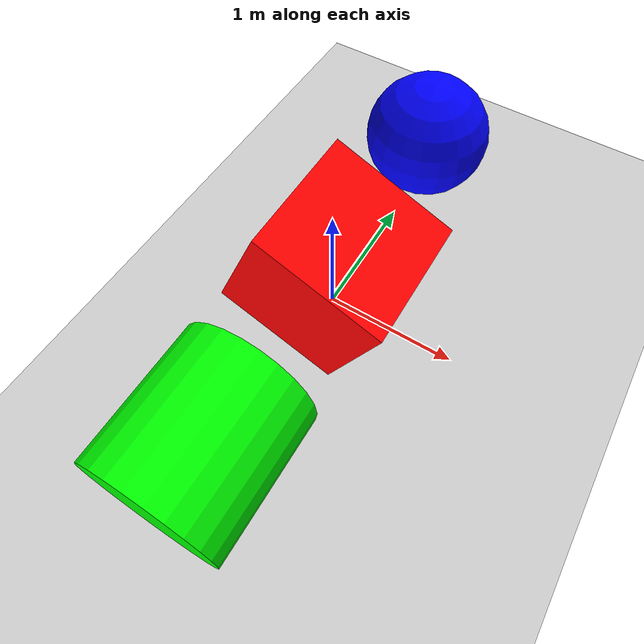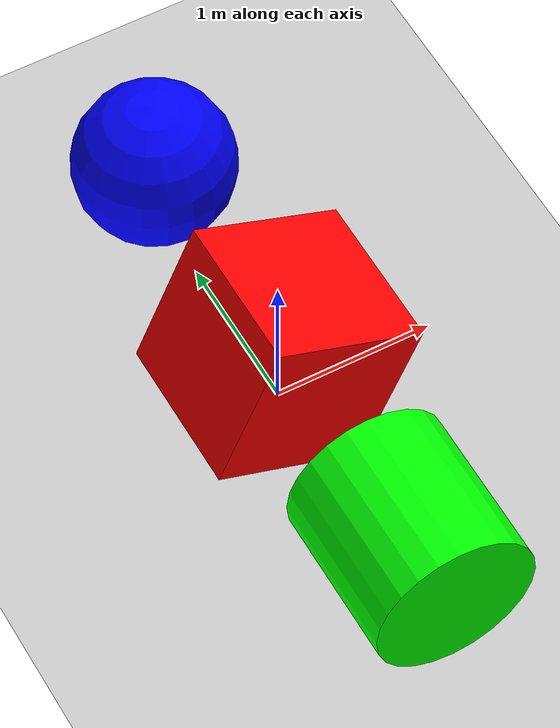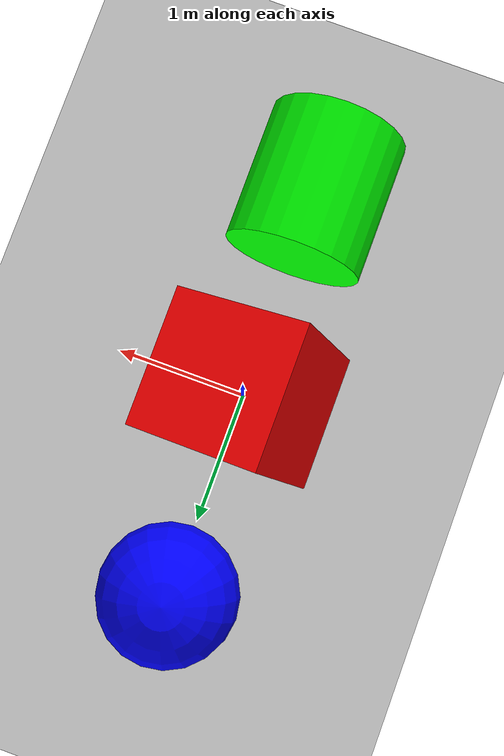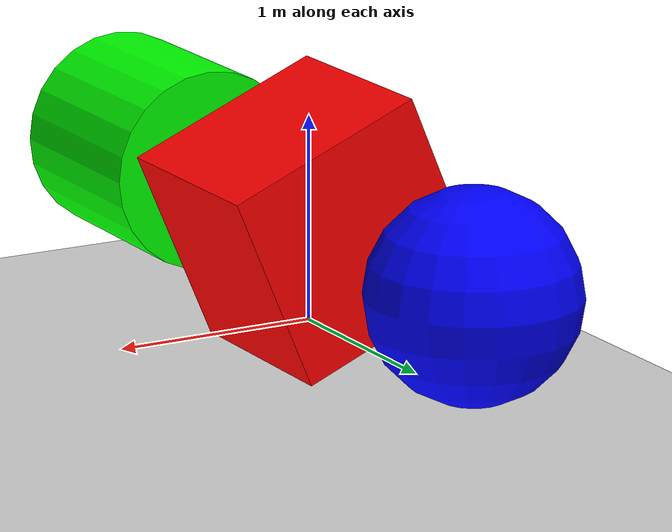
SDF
<?xml version="1.0" ?>
<!--
  Demo of simple shapes rolling downhill.
-->
<sdf version="1.6">
  <world name="shapes">
    <physics name="1ms" type="ode">
      <max_step_size>0.001</max_step_size>
      <real_time_factor>1.0</real_time_factor>
    </physics>
    <plugin
      filename="gz-sim-physics-system"
      name="gz::sim::systems::Physics">
    </plugin>
    <plugin
      filename="gz-sim-user-commands-system"
      name="gz::sim::systems::UserCommands">
    </plugin>
    <plugin
      filename="gz-sim-scene-broadcaster-system"
      name="gz::sim::systems::SceneBroadcaster">
    </plugin>
    <plugin
      filename="gz-sim-buoyancy-system"
      name="gz::sim::systems::Buoyancy">
      <uniform_fluid_density>1</uniform_fluid_density>
    </plugin>

    <light type="directional" name="sun">
      <cast_shadows>true</cast_shadows>
      <pose>0 0 10 0 0 0</pose>
      <diffuse>0.8 0.8 0.8 1</diffuse>
      <specular>0.2 0.2 0.2 1</specular>
      <attenuation>
        <range>1000</range>
        <constant>0.9</constant>
        <linear>0.01</linear>
        <quadratic>0.001</quadratic>
      </attenuation>
      <direction>-0.5 0.1 -0.9</direction>
    </light>

    <model name="ground_plane">
      <static>true</static>
      <pose>0 0 -0.5 0 -0.5 0</pose>
      <link name="link">
        <collision name="collision">
          <geometry>
            <plane>
              <normal>0 0 1</normal>
              <size>100 100</size>
            </plane>
          </geometry>
        </collision>
        <visual name="visual">
          <geometry>
            <plane>
              <normal>0 0 1</normal>
              <size>100 100</size>
            </plane>
          </geometry>
          <material>
            <ambient>0.8 0.8 0.8 1</ambient>
            <diffuse>0.8 0.8 0.8 1</diffuse>
            <specular>0.8 0.8 0.8 1</specular>
          </material>
        </visual>
      </link>
    </model>

    <model name="box">
      <plugin name='gz::sim::systems::PythonSystemLoader' filename='gz-sim-python-system-loader-system'>
        <module_name>driver</module_name>
        <force>10000</force>
      </plugin>
      <pose>0 0 0.5 0 0.4 0</pose>
      <link name="box_link">
        <inertial>
          <inertia>
            <ixx>0.16666</ixx>
            <ixy>0</ixy>
            <ixz>0</ixz>
            <iyy>0.16666</iyy>
            <iyz>0</iyz>
            <izz>0.16666</izz>
          </inertia>
          <mass>999.0</mass>
        </inertial>
        <collision name="box_collision">
          <geometry>
            <box>
              <size>1 1 1</size>
            </box>
          </geometry>
        </collision>

        <visual name="box_visual">
          <geometry>
            <box>
              <size>1 1 1</size>
            </box>
          </geometry>
          <material>
            <ambient>1 0 0 1</ambient>
            <diffuse>1 0 0 1</diffuse>
            <specular>1 0 0 1</specular>
          </material>
        </visual>
      </link>
    </model>

    <model name="cylinder">
      <pose>0 -1.5 0.5 1.57079632679 0 0</pose>
      <link name="cylinder_link">
        <inertial>
          <inertia>
            <ixx>0.0938</ixx>
            <ixy>0</ixy>
            <ixz>0</ixz>
            <iyy>0.0938</iyy>
            <iyz>0</iyz>
            <izz>0.125</izz>
          </inertia>
          <mass>1.0</mass>
        </inertial>
        <collision name="cylinder_collision">
          <geometry>
            <cylinder>
              <radius>0.5</radius>
              <length>1.0</length>
            </cylinder>
          </geometry>
        </collision>

        <visual name="cylinder_visual">
          <geometry>
            <cylinder>
              <radius>0.5</radius>
              <length>1.0</length>
            </cylinder>
          </geometry>
          <material>
            <ambient>0 1 0 1</ambient>
            <diffuse>0 1 0 1</diffuse>
            <specular>0 1 0 1</specular>
          </material>
        </visual>
      </link>
    </model>

    <model name="sphere">
      <pose>0 1.5 0.5 0 0 0</pose>
      <link name="sphere_link">
        <inertial>
          <inertia>
            <ixx>0.1</ixx>
            <ixy>0</ixy>
            <ixz>0</ixz>
            <iyy>0.1</iyy>
            <iyz>0</iyz>
            <izz>0.1</izz>
          </inertia>
          <mass>1.0</mass>
        </inertial>
        <collision name="sphere_collision">
          <geometry>
            <sphere>
              <radius>0.5</radius>
            </sphere>
          </geometry>
        </collision>

        <visual name="sphere_visual">
          <geometry>
            <sphere>
              <radius>0.5</radius>
            </sphere>
          </geometry>
          <material>
            <ambient>0 0 1 1</ambient>
            <diffuse>0 0 1 1</diffuse>
            <specular>0 0 1 1</specular>
          </material>
        </visual>
      </link>
    </model>

  </world>
</sdf>
